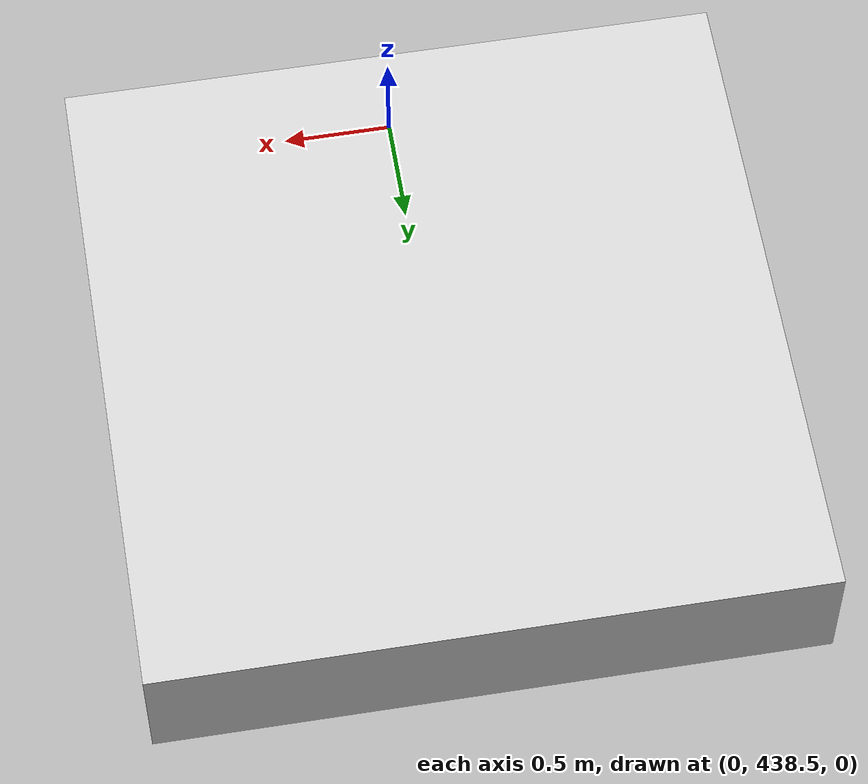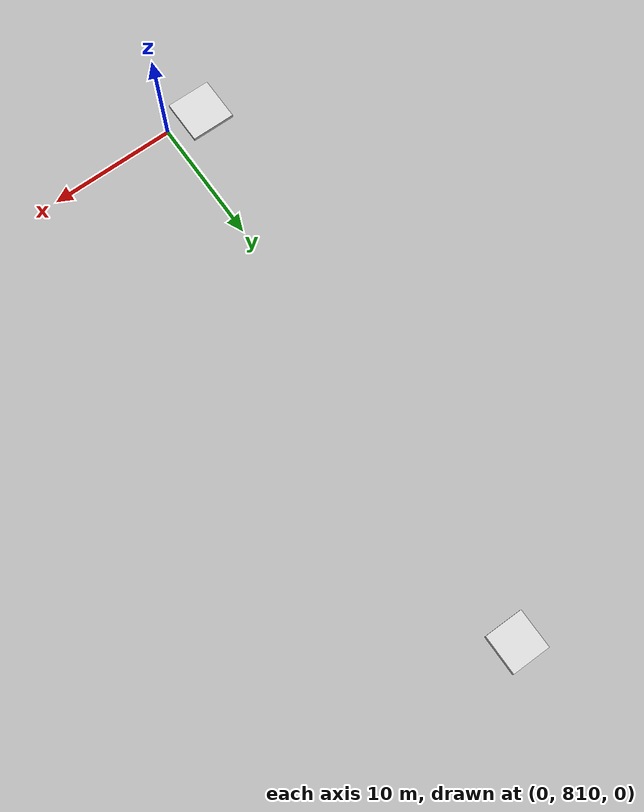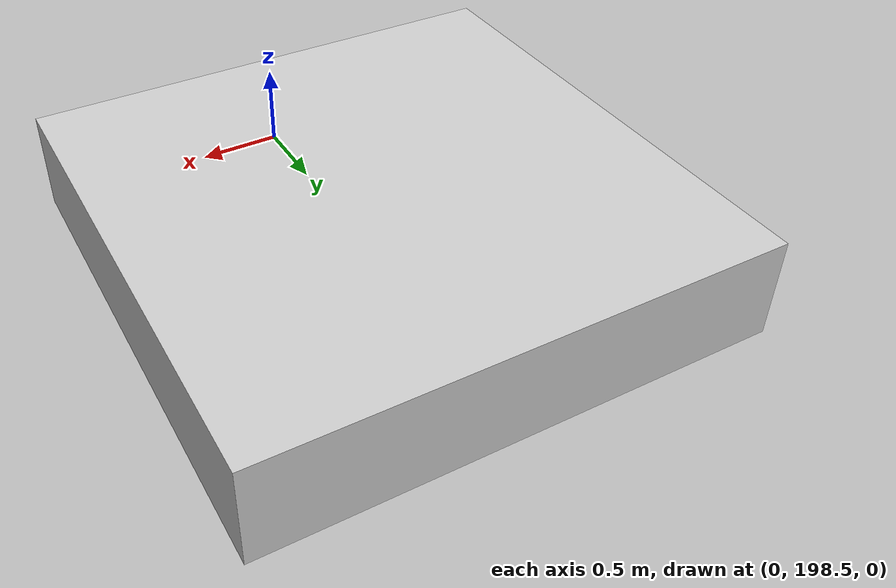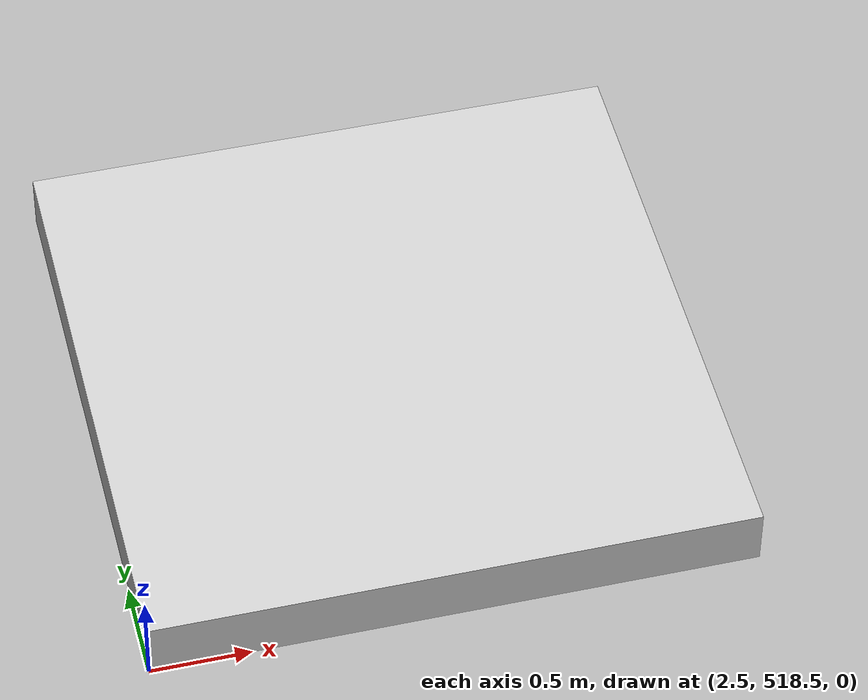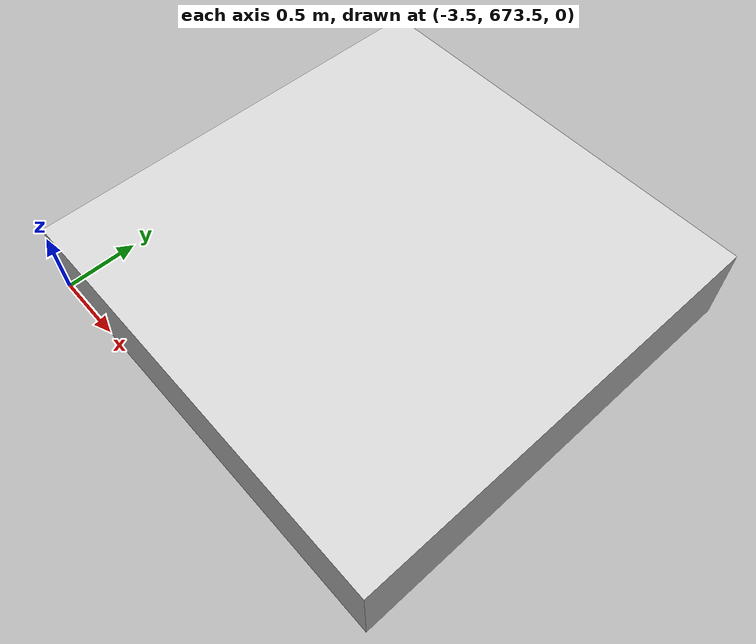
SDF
<sdf version="1.7">
 <world name="runway_straight_route">
  <physics name="1ms" type="ignore">
   <max_step_size>0.001</max_step_size>
   <real_time_factor>1</real_time_factor>
  </physics>
  <plugin filename="gz-sim-physics-system" name="gz::sim::systems::Physics"/>
  <plugin filename="gz-sim-user-commands-system" name="gz::sim::systems::UserCommands"/>
  <plugin filename="gz-sim-scene-broadcaster-system" name="gz::sim::systems::SceneBroadcaster"/>
  <plugin filename="gz-sim-imu-system" name="gz::sim::systems::Imu"/>
  <plugin filename="gz-sim-navsat-system" name="gz::sim::systems::NavSat"/>
  <plugin filename="gz-sim-sensors-system" name="gz::sim::systems::Sensors">
   <render_engine>ogre2</render_engine>
  </plugin>
  <scene><ambient>1.0 1.0 1.0</ambient><background>0.8 0.8 0.8</background></scene>
  <spherical_coordinates>
   <latitude_deg>39.920782</latitude_deg>
   <longitude_deg>32.854115</longitude_deg>
   <elevation>584</elevation>
   <heading_deg>0</heading_deg>
   <surface_model>EARTH_WGS84</surface_model>
  </spherical_coordinates>
  <light type="directional" name="sun">
   <pose>0 0 10 0 0 0</pose>
   <diffuse>0.8 0.8 0.8 1</diffuse>
   <specular>0.8 0.8 0.8 1</specular>
   <attenuation>
    <range>1000</range>
    <constant>0.9</constant>
    <linear>0.01</linear>
    <quadratic>0.001</quadratic>
   </attenuation>
   <direction>-0.5 0.1 -0.9</direction>
  </light>
  <model name="route_qr_box_1">
   <static>true</static>
   <pose>0 200 0.3 0 0 0</pose>
   <link name="link">
    <collision name="collision"><geometry><box><size>3.0 3.0 0.6</size></box></geometry></collision>
    <visual name="visual">
     <geometry><box><size>3.0 3.0 0.6</size></box></geometry>
     <material>
      <ambient>0.8 0.8 0.8 1</ambient>
      <diffuse>0.8 0.8 0.8 1</diffuse>
      <specular>0.1 0.1 0.1 1</specular>
      <pbr>
       <metal>
        <albedo_map>/home/delpiyero/Staj/models/textures/qr_text_1.png</albedo_map>
        <roughness>0.6</roughness>
        <metalness>0</metalness>
       </metal>
      </pbr>
     </material>
    </visual>
   </link>
  </model>
  <model name="route_stop_sign_1">
   <static>true</static>
   <pose>4 280 0.15 0 0 0</pose>
   <link name="link">
    <collision name="collision"><geometry><box><size>3.5 3.5 0.3</size></box></geometry></collision>
    <visual name="visual">
     <geometry><box><size>3.5 3.5 0.3</size></box></geometry>
     <material>
      <ambient>0.8 0.8 0.8 1</ambient>
      <diffuse>0.8 0.8 0.8 1</diffuse>
      <specular>0.1 0.1 0.1 1</specular>
      <pbr>
       <metal>
        <albedo_map>/home/delpiyero/Staj/models/textures/stop_sign.png</albedo_map>
        <roughness>0.7</roughness>
        <metalness>0</metalness>
       </metal>
      </pbr>
     </material>
    </visual>
   </link>
  </model>
  <model name="route_qr_box_2">
   <static>true</static>
   <pose>0 440 0.3 0 0 0</pose>
   <link name="link">
    <collision name="collision"><geometry><box><size>3.0 3.0 0.6</size></box></geometry></collision>
    <visual name="visual">
     <geometry><box><size>3.0 3.0 0.6</size></box></geometry>
     <material>
      <ambient>0.8 0.8 0.8 1</ambient>
      <diffuse>0.8 0.8 0.8 1</diffuse>
      <specular>0.1 0.1 0.1 1</specular>
      <pbr>
       <metal>
        <albedo_map>/home/delpiyero/Staj/models/textures/qr_text_2.png</albedo_map>
        <roughness>0.6</roughness>
        <metalness>0</metalness>
       </metal>
      </pbr>
     </material>
    </visual>
   </link>
  </model>
  <model name="route_checker_panel_1">
   <static>true</static>
   <pose>4 520 0.15 0 0 0</pose>
   <link name="link">
    <collision name="collision"><geometry><box><size>3.0 3.0 0.3</size></box></geometry></collision>
    <visual name="visual">
     <geometry><box><size>3.0 3.0 0.3</size></box></geometry>
     <material>
      <ambient>0.8 0.8 0.8 1</ambient>
      <diffuse>0.8 0.8 0.8 1</diffuse>
      <specular>0.1 0.1 0.1 1</specular>
      <pbr>
       <metal>
        <albedo_map>/home/delpiyero/Staj/models/textures/checker_panel.png</albedo_map>
        <roughness>0.7</roughness>
        <metalness>0</metalness>
       </metal>
      </pbr>
     </material>
    </visual>
   </link>
  </model>
  <model name="route_qr_box_3">
   <static>true</static>
   <pose>-4 600 0.3 0 0 0</pose>
   <link name="link">
    <collision name="collision"><geometry><box><size>3.0 3.0 0.6</size></box></geometry></collision>
    <visual name="visual">
     <geometry><box><size>3.0 3.0 0.6</size></box></geometry>
     <material>
      <ambient>0.8 0.8 0.8 1</ambient>
      <diffuse>0.8 0.8 0.8 1</diffuse>
      <specular>0.1 0.1 0.1 1</specular>
      <pbr>
       <metal>
        <albedo_map>/home/delpiyero/Staj/models/textures/qr_text_3.png</albedo_map>
        <roughness>0.6</roughness>
        <metalness>0</metalness>
       </metal>
      </pbr>
     </material>
    </visual>
   </link>
  </model>
  <model name="route_color_box_red">
   <static>true</static>
   <pose>-2 675 0.3 0 0 0</pose>
   <link name="link">
    <collision name="collision"><geometry><box><size>3.0 3.0 0.6</size></box></geometry></collision>
    <visual name="visual">
     <geometry><box><size>3.0 3.0 0.6</size></box></geometry>
     <material>
      <ambient>0.8 0.8 0.8 1</ambient>
      <diffuse>0.8 0.8 0.8 1</diffuse>
      <specular>0.1 0.1 0.1 1</specular>
      <pbr>
       <metal>
        <albedo_map>/home/delpiyero/Staj/models/textures/box_red.png</albedo_map>
        <roughness>0.6</roughness>
        <metalness>0</metalness>
       </metal>
      </pbr>
     </material>
    </visual>
   </link>
  </model>
  <model name="route_qr_box_4">
   <static>true</static>
   <pose>4 740 0.3 0 0 0</pose>
   <link name="link">
    <collision name="collision"><geometry><box><size>3.0 3.0 0.6</size></box></geometry></collision>
    <visual name="visual">
     <geometry><box><size>3.0 3.0 0.6</size></box></geometry>
     <material>
      <ambient>0.8 0.8 0.8 1</ambient>
      <diffuse>0.8 0.8 0.8 1</diffuse>
      <specular>0.1 0.1 0.1 1</specular>
      <pbr>
       <metal>
        <albedo_map>/home/delpiyero/Staj/models/textures/qr_text_4.png</albedo_map>
        <roughness>0.6</roughness>
        <metalness>0</metalness>
       </metal>
      </pbr>
     </material>
    </visual>
   </link>
  </model>
  <model name="route_stop_sign_2">
   <static>true</static>
   <pose>-3 810 0.15 0 0 0</pose>
   <link name="link">
    <collision name="collision"><geometry><box><size>3.5 3.5 0.3</size></box></geometry></collision>
    <visual name="visual">
     <geometry><box><size>3.5 3.5 0.3</size></box></geometry>
     <material>
      <ambient>0.8 0.8 0.8 1</ambient>
      <diffuse>0.8 0.8 0.8 1</diffuse>
      <specular>0.1 0.1 0.1 1</specular>
      <pbr>
       <metal>
        <albedo_map>/home/delpiyero/Staj/models/textures/stop_sign.png</albedo_map>
        <roughness>0.7</roughness>
        <metalness>0</metalness>
       </metal>
      </pbr>
     </material>
    </visual>
   </link>
  </model>
  <model name="route_color_box_blue">
   <static>true</static>
   <pose>2 855 0.3 0 0 0</pose>
   <link name="link">
    <collision name="collision"><geometry><box><size>3.0 3.0 0.6</size></box></geometry></collision>
    <visual name="visual">
     <geometry><box><size>3.0 3.0 0.6</size></box></geometry>
     <material>
      <ambient>0.8 0.8 0.8 1</ambient>
      <diffuse>0.8 0.8 0.8 1</diffuse>
      <specular>0.1 0.1 0.1 1</specular>
      <pbr>
       <metal>
        <albedo_map>/home/delpiyero/Staj/models/textures/box_blue.png</albedo_map>
        <roughness>0.6</roughness>
        <metalness>0</metalness>
       </metal>
      </pbr>
     </material>
    </visual>
   </link>
  </model>
 </world>
</sdf>
